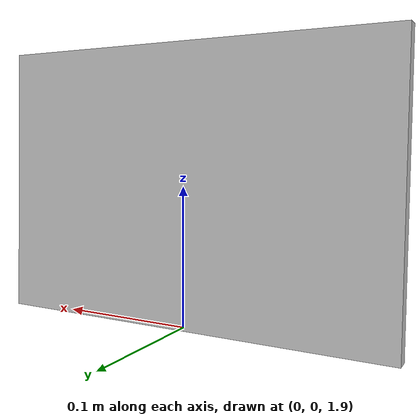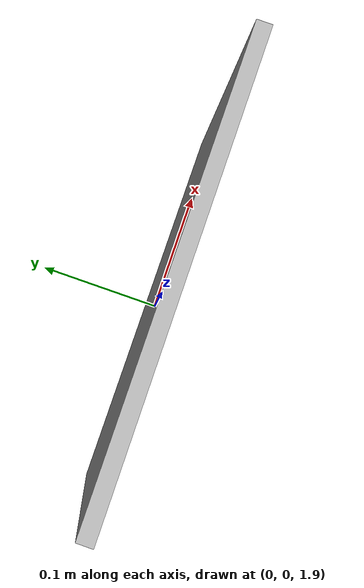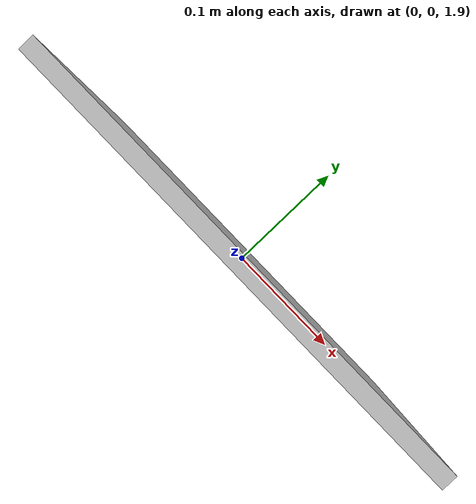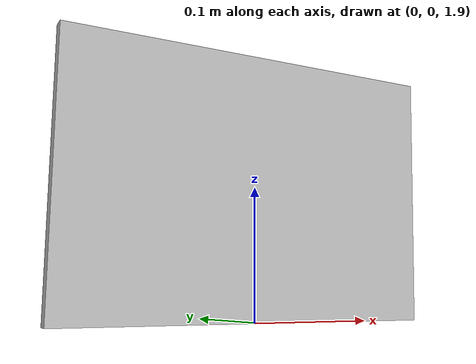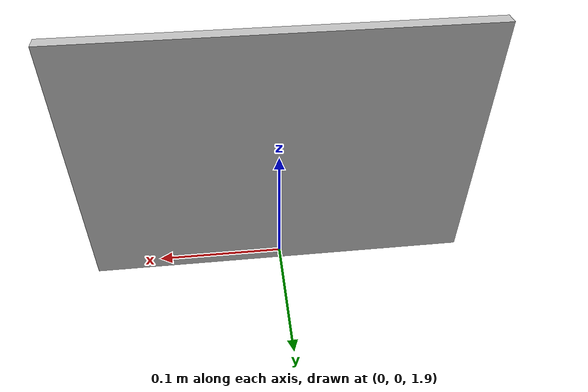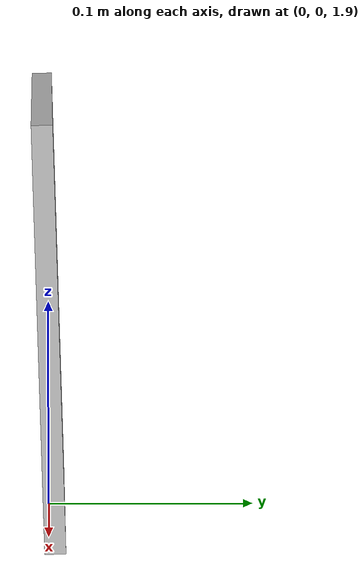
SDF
<?xml version="1.0" encoding="UTF-8"?>
<sdf version="1.4">
   <model name="emergency exit sign">
      <static>true</static>
      <link name="link">
		  <pose> 0 0 2 1.6 0 0</pose>
         <collision name="collision">
            <geometry>
				<box>
					<size>0.3 0.2 0.01 1.6 0 0</size>
				</box>
            </geometry>
            <surface>
               <friction>
                  <ode>
                     <mu>100</mu>
                     <mu2>50</mu2>
                  </ode>
               </friction>
            </surface>
         </collision>
         <visual name="visual">
            <cast_shadows>false</cast_shadows>
            <geometry>
				<box>
					<size>0.3 0.2 0.01 1.6 0 0</size>
				</box>
            </geometry>
            <material>
               <script>
                  <uri>model://emergency_exit/materials/scripts</uri>
                  <uri>model://emergency_exit/materials/textures/</uri>
                  <name>emergency_exit/Image</name>
               </script>
            </material>
         </visual>
      </link>
   </model>
</sdf>
